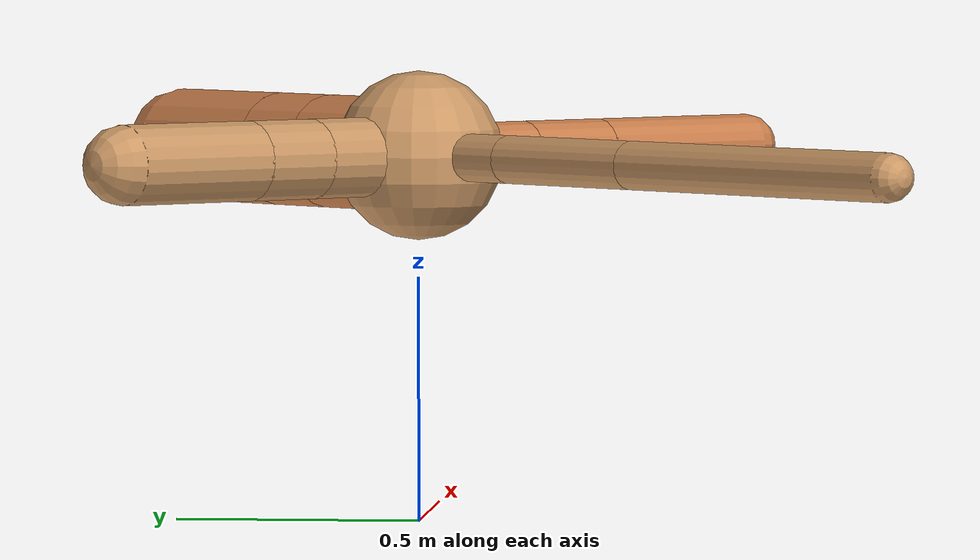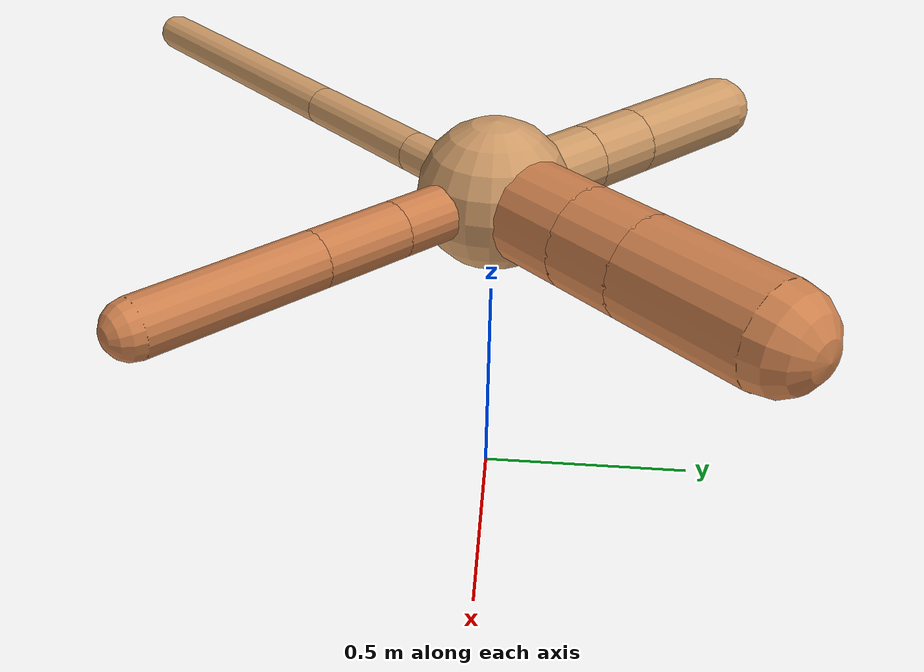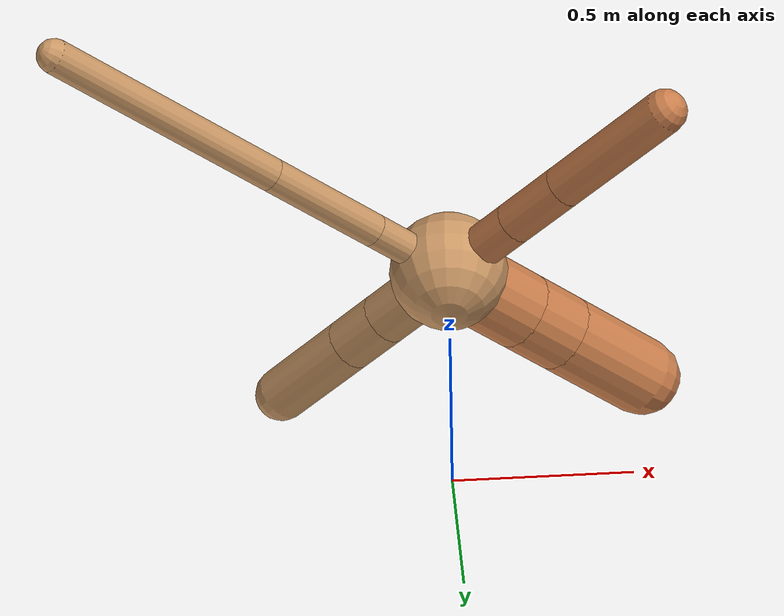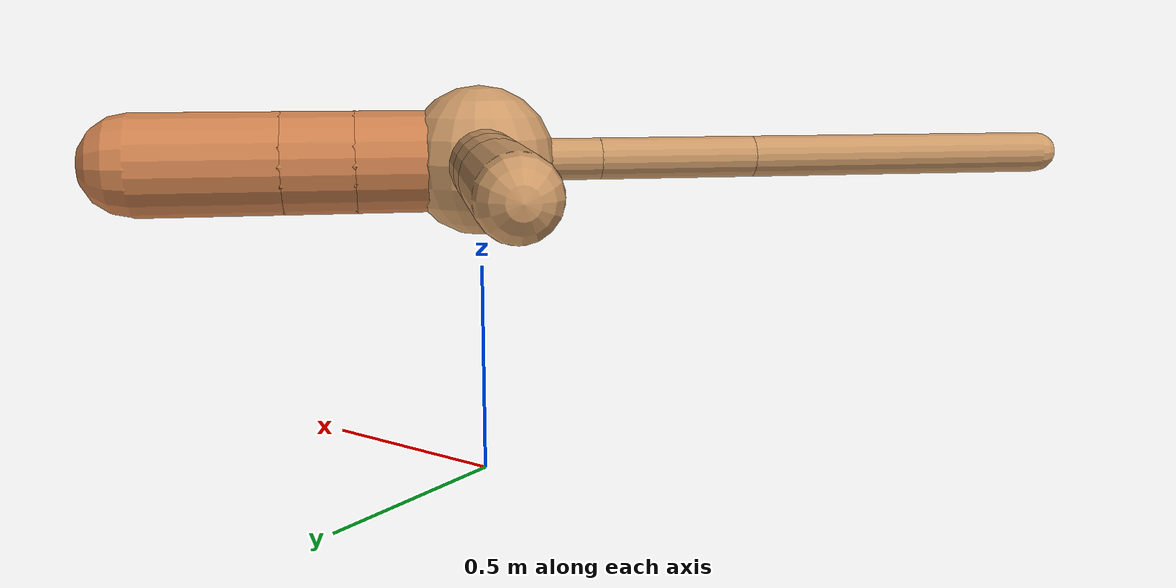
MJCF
<?xml version="1.0" ?>
<mujoco model="ant">

	<compiler angle="degree" coordinate="local" inertiafromgeom="true"/>

	<option integrator="RK4" timestep="0.01"/>

	<custom>

		<numeric data="0.0 0.0 0.55 1.0 0.0 0.0 0.0 0.0 1.0 0.0 -1.0 0.0 -1.0 0.0 1.0" name="init_qpos"/>

	</custom>

	<default>

		<joint armature="1" damping="1" limited="true"/>

		<geom conaffinity="0" condim="3" density="5.0" friction="1.5 0.1 0.1" margin="0.01" rgba="0.8 0.6 0.4 1"/>

	</default>

	<worldbody>

		<body name="torso" pos="0 0 0.75">

			<geom name="torso_geom" pos="0 0 0" size="0.17307840033319305" type="sphere"/>

			<!--joint armature="0" damping="0" limited="false" margin="0.01" name="root" pos="0 0 0" type="free"/-->

			<body name="front_left_leg" pos="0 0 0">

				<geom fromto="0 0 0 0.2 0.2 0" name="aux_1_geom" size="0.11707826576293698" type="capsule" rgba=".8 .5 .3 1"/>

				<body name="aux_1" pos="0.2 0.2 0">

					<joint axis="0 0 1" name="hip_1" pos="0.0 0.0 0.0" range="-40 40" type="hinge"/>

					<geom fromto="0 0 0 0.11475353557463874 0.11475353557463874 0" name="left_leg_geom" size="0.11707826576293698" type="capsule" rgba=".8 .5 .3 1"/>

					<body pos="0.11475353557463874 0.11475353557463874 0" name="front_left_foot">

						<joint axis="-1 1 0" name="ankle_1" pos="0.0 0.0 0.0" range="30 100" type="hinge"/>

						<geom fromto="0 0 0 0.2295070711492775 0.2295070711492775 0" name="left_ankle_geom" size="0.11707826576293698" type="capsule" rgba=".8 .5 .3 1"/>

					</body>

				</body>

			</body>

			<body name="front_right_leg" pos="0 0 0">

				<geom fromto="0 0 0 -0.2 0.2 0" name="aux_2_geom" size="0.0813353114761728" type="capsule"/>

				<body name="aux_2" pos="-0.2 0.2 0">

					<joint axis="0 0 1" name="hip_2" pos="0.0 0.0 0.0" range="-40 40" type="hinge"/>

					<geom fromto="0 0 0 -0.11415770538955933 0.11415770538955933 0" name="right_leg_geom" size="0.0813353114761728" type="capsule"/>

					<body pos="-0.11415770538955933 0.11415770538955933 0" name="front_right_foot">

						<joint axis="1 1 0" name="ankle_2" pos="0.0 0.0 0.0" range="-100 -30" type="hinge"/>

						<geom fromto="0 0 0 -0.22831541077911865 0.22831541077911865 0" name="right_ankle_geom" size="0.0813353114761728" type="capsule"/>

					</body>

				</body>

			</body>

			<body name="left_back_leg" pos="0 0 0">

				<geom fromto="0 0 0 -0.2 -0.2 0" name="aux_3_geom" size="0.04898126310146249" type="capsule"/>

				<body name="aux_3" pos="-0.2 -0.2 0">

					<joint axis="0 0 1" name="hip_3" pos="0.0 0.0 0.0" range="-40 40" type="hinge"/>

					<geom fromto="0 0 0 -0.2648915968592032 -0.2648915968592032 0" name="back_leg_geom" size="0.04898126310146249" type="capsule"/>

					<body pos="-0.2648915968592032 -0.2648915968592032 0" name="left_back_foot">

						<joint axis="-1 1 0" name="ankle_3" pos="0.0 0.0 0.0" range="-100 -30" type="hinge"/>

						<geom fromto="0 0 0 -0.5297831937184064 -0.5297831937184064 0" name="third_ankle_geom" size="0.04898126310146249" type="capsule"/>

					</body>

				</body>

			</body>

			<body name="right_back_leg" pos="0 0 0">

				<geom fromto="0 0 0 0.2 -0.2 0" name="aux_4_geom" size="0.06354328809133358" type="capsule" rgba=".8 .5 .3 1"/>

				<body name="aux_4" pos="0.2 -0.2 0">

					<joint axis="0 0 1" name="hip_4" pos="0.0 0.0 0.0" range="-40 40" type="hinge"/>

					<geom fromto="0 0 0 0.14520129676403806 -0.14520129676403806 0" name="rightback_leg_geom" size="0.06354328809133358" type="capsule" rgba=".8 .5 .3 1"/>

					<body pos="0.14520129676403806 -0.14520129676403806 0" name="right_back_foot">

						<joint axis="1 1 0" name="ankle_4" pos="0.0 0.0 0.0" range="30 100" type="hinge"/>

						<geom fromto="0 0 0 0.2904025935280761 -0.2904025935280761 0" name="fourth_ankle_geom" size="0.06354328809133358" type="capsule" rgba=".8 .5 .3 1"/>

					</body>

				</body>

			</body>

		</body>

	</worldbody>

	<actuator>

		<motor ctrllimited="true" ctrlrange="-1.0 1.0" joint="hip_4" gear="150"/>

		<motor ctrllimited="true" ctrlrange="-1.0 1.0" joint="ankle_4" gear="150"/>

		<motor ctrllimited="true" ctrlrange="-1.0 1.0" joint="hip_1" gear="150"/>

		<motor ctrllimited="true" ctrlrange="-1.0 1.0" joint="ankle_1" gear="150"/>

		<motor ctrllimited="true" ctrlrange="-1.0 1.0" joint="hip_2" gear="150"/>

		<motor ctrllimited="true" ctrlrange="-1.0 1.0" joint="ankle_2" gear="150"/>

		<motor ctrllimited="true" ctrlrange="-1.0 1.0" joint="hip_3" gear="150"/>

		<motor ctrllimited="true" ctrlrange="-1.0 1.0" joint="ankle_3" gear="150"/>

	</actuator>

</mujoco>
